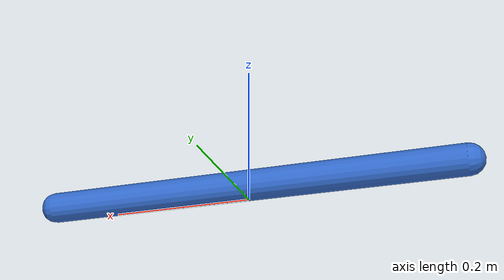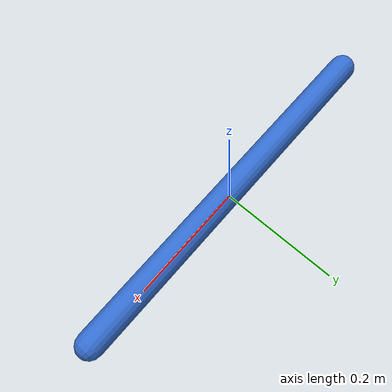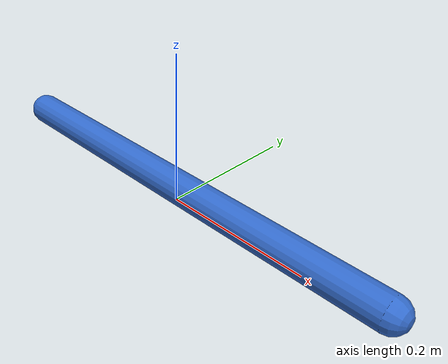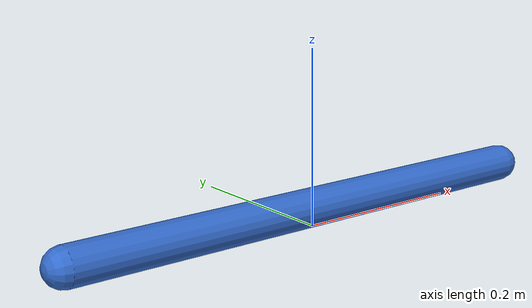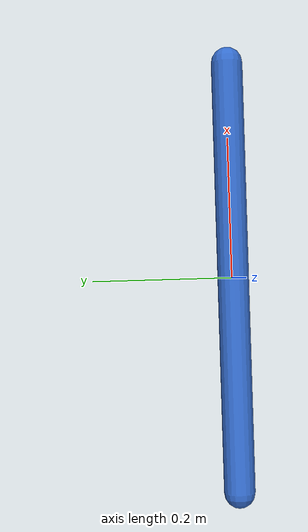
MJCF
<mujoco model="stick_prim_blue_22">
  <compiler angle="radian"/>
  <asset>
  </asset>
  <worldbody>
    <body name="stick_prim_blue_22">
      <freejoint/>
      <geom name="stick_prim_blue_22_g0" type="capsule" size="0.022" fromto="-0.303 0 0.022 0.303 0 0.022" rgba="0.2 0.42 0.8 1" mass="0.05" friction="0.05 0.05 0.005" condim="4"/>
    </body>
  </worldbody>
</mujoco>
